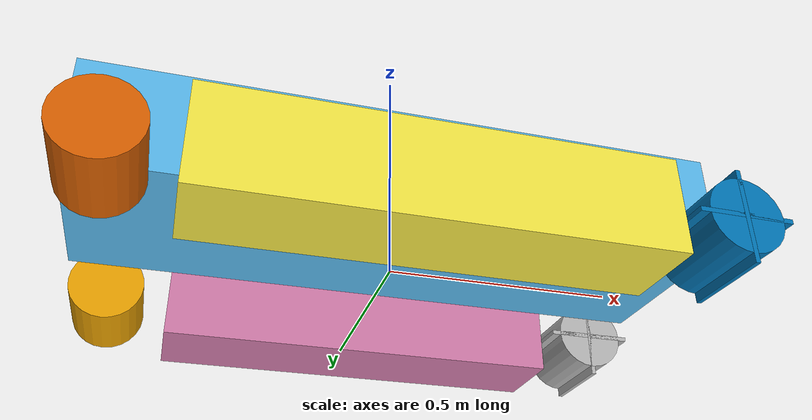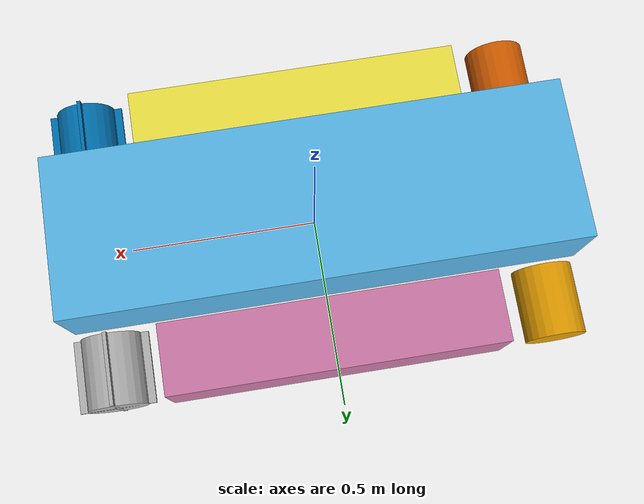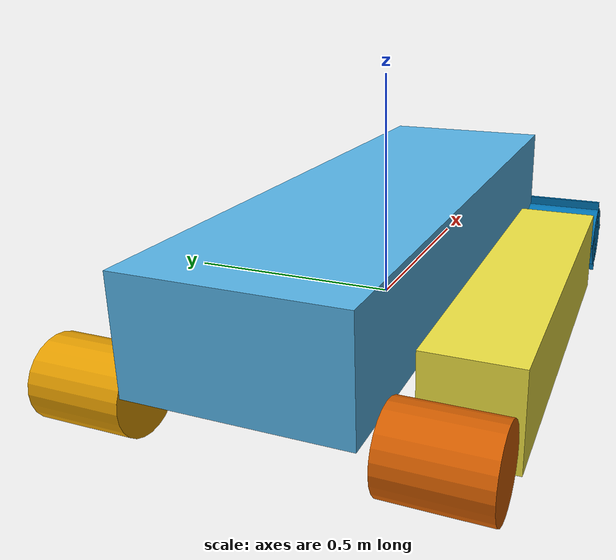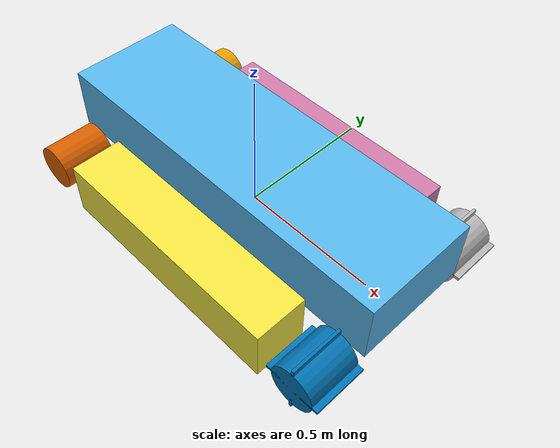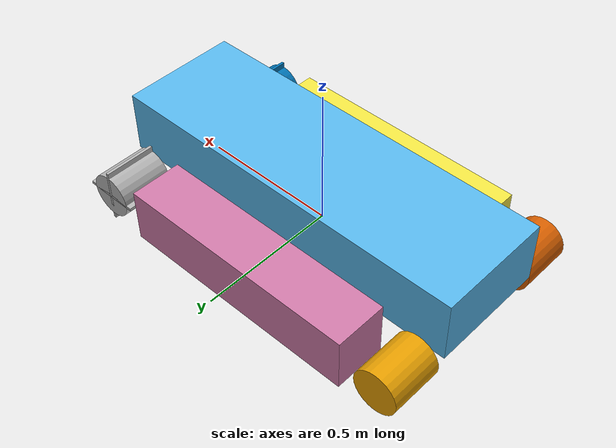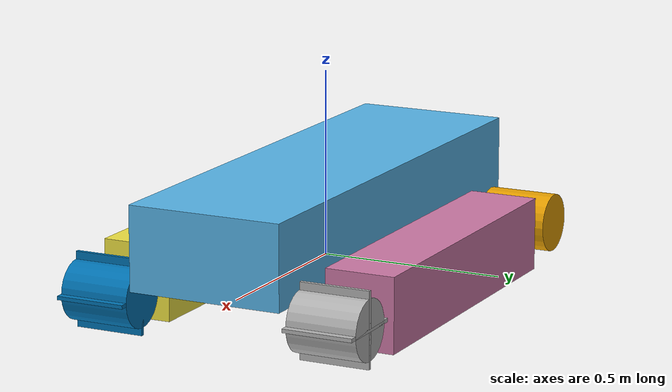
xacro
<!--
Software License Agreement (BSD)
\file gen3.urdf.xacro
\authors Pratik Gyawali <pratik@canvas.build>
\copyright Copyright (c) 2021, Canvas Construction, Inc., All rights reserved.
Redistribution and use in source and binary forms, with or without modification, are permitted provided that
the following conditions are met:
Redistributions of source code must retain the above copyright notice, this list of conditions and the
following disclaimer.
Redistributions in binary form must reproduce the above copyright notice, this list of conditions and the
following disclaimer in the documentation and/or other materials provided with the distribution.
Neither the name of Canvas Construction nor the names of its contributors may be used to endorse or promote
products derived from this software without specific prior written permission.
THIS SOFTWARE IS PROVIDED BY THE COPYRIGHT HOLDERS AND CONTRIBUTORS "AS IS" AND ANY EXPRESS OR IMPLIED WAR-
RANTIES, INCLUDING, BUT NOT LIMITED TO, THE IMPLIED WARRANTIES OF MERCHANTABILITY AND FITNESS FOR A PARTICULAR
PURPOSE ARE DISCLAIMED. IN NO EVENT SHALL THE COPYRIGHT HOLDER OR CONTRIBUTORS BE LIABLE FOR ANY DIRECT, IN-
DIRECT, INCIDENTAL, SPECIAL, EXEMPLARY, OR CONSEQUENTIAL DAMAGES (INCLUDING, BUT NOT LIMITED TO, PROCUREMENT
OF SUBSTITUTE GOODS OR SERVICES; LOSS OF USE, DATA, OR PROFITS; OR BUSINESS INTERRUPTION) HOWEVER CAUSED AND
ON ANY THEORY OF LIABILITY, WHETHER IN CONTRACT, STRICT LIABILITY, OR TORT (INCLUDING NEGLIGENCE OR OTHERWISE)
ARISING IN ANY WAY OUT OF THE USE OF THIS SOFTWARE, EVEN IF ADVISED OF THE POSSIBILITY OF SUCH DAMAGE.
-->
<?xml version="1.0"?>
<robot name="gen3" xmlns:xacro="http://ros.org/wiki/xacro">

  <xacro:arg name="robot_namespace" default="/" />

  <!-- Included URDF/XACRO Files -->
  <xacro:include filename="$(find gen3_description)/urdf_xacro/track_gazebo.urdf.xacro" />

  <!-- Base Size -->
  <xacro:property name="base_x_size" value="0.98740000" />
  <xacro:property name="base_y_size" value="0.57090000" />
  <xacro:property name="base_z_size" value="0.24750000" />

  <!-- Wheel Mounting Positions -->
  <xacro:property name="wheelbase" value="0.5120" />
  <xacro:property name="track" value="0.5708" />
  <xacro:property name="wheel_vertical_offset" value="0.03282" />

  <!-- Wheel Properties -->
  <xacro:property name="wheel_length" value="0.1143" />
  <xacro:property name="wheel_radius" value="0.1651" />

  <!-- Track mounting positions -->
  <xacro:property name="x" value="0" />
  <xacro:property name="y" value="0.32" />
  <xacro:property name="z" value="0" />

  <xacro:macro name="make_box_inertia" params="mass size_x size_y size_z">
    <inertial>
        <mass value="${mass}" />
        <inertia ixx="${mass * (size_y * size_y + size_z * size_z) / 12}" ixy="0" ixz="0" iyy="${mass * (size_z * size_z + size_x * size_x) / 12}" iyz="0" izz="${mass * (size_x * size_x + size_y * size_y) / 12}" />
    </inertial>
</xacro:macro>

<link name="dummy">
</link>

<link name="base_link">

      <xacro:make_box_inertia mass="100" size_x="1.34" size_y="0.42" size_z="0.225" />

      <visual>
          <geometry>
              <box size="1.34 0.42 0.225" />
          </geometry>
          <origin xyz="0 0 0.15" rpy="0 0 0"/>
      </visual>

      <collision>
          <geometry>
              <box size="1.34 0.42 0.225" />
          </geometry>
          <origin xyz="0 0 0.15" rpy="0 0 0"/>
      </collision>
  </link>

  <link name="imu_link">

      <visual>
          <geometry>
              <box size="0.02 0.02 0.02" />
          </geometry>

      </visual>
  </link>

  <joint name="dummy_joint" type="fixed">
     <parent link="dummy"/>
     <child link="base_link"/>

   </joint>

 <joint name="imu_joint" type="fixed">
     <parent link="base_link"/>
     <child link="imu_link"/>
     <origin xyz="0 0 0.2" rpy="0 0 0" />
  </joint>

  <!-- Gen3 Track macros -->

  <xacro:gen3_track track_prefix="right" x="${x}" y="-${y}" z="${z}">
    <origin xyz="${x} -${y} ${z}" rpy="0 0 0" />
  </xacro:gen3_track>

  <xacro:gen3_track track_prefix="left" x="${x}" y="${y}" z="${z}">
    <origin xyz="${x} ${y} ${z}" rpy="0 0 0" />
  </xacro:gen3_track>

  <gazebo>

  <plugin name="gazebo_ros_control" filename="libgazebo_ros_control.so">
    <robotNamespace>$(arg robot_namespace)</robotNamespace>
    <legacyModeNS>true</legacyModeNS>
  </plugin>

  </gazebo>

    <gazebo reference="imu_link">
    <gravity>true</gravity>
    <sensor name="imu_sensor" type="imu">
      <imu>
          <angular_velocity>
            <x>
              <noise type="gaussian">
                <mean>0.0</mean>
                <stddev>2e-4</stddev>
                <bias_mean>0.0000075</bias_mean>
                <bias_stddev>0.0000008</bias_stddev>
              </noise>
            </x>
            <y>
              <noise type="gaussian">
                <mean>0.0</mean>
                <stddev>2e-4</stddev>
                <bias_mean>0.0000075</bias_mean>
                <bias_stddev>0.0000008</bias_stddev>
              </noise>
            </y>
            <z>
              <noise type="gaussian">
                <mean>0.0</mean>
                <stddev>2e-4</stddev>
                <bias_mean>0.0000075</bias_mean>
                <bias_stddev>0.0000008</bias_stddev>
              </noise>
            </z>
          </angular_velocity>
          <linear_acceleration>
            <x>
              <noise type="gaussian">
                <mean>0.0</mean>
                <stddev>1.7e-2</stddev>
                <bias_mean>0.1</bias_mean>
                <bias_stddev>0.001</bias_stddev>
              </noise>
            </x>
            <y>
              <noise type="gaussian">
                <mean>0.0</mean>
                <stddev>1.7e-2</stddev>
                <bias_mean>0.1</bias_mean>
                <bias_stddev>0.001</bias_stddev>
              </noise>
            </y>
            <z>
              <noise type="gaussian">
                <mean>0.0</mean>
                <stddev>1.7e-2</stddev>
                <bias_mean>0.1</bias_mean>
                <bias_stddev>0.001</bias_stddev>
              </noise>
            </z>
          </linear_acceleration>
      </imu>
      <always_on>true</always_on>
      <update_rate>100</update_rate>
      <visualize>true</visualize>
      <topic>__default_topic__</topic>
      <plugin filename="libgazebo_ros_imu_sensor.so" name="imu_plugin">
        <topicName>imu</topicName>
        <bodyName>imu_link</bodyName>
        <updateRateHZ>10.0</updateRateHZ>
        <gaussianNoise>0.0</gaussianNoise>
        <xyzOffset>0 0 0</xyzOffset>
        <rpyOffset>0 0 0</rpyOffset>
        <frameName>imu_link</frameName>
        <initialOrientationAsReference>false</initialOrientationAsReference>
      </plugin>
      <pose>0 0 0.5 0 0 0</pose>
    </sensor>
  </gazebo>

</robot>

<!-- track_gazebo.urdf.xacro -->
<robot xmlns:xacro="http://ros.org/wiki/xacro" name="gen3_track">

	<xacro:macro name="gen3_track" params="track_prefix x y z *joint_pose ">

	 <xacro:include filename="$(find gazebo_continuous_track)/urdf_xacro/macros_track_gazebo.urdf.xacro" />
	 <xacro:include filename="$(find gen3_description)/urdf_xacro/track.urdf.xacro" />

	 <xacro:property name="track_material">
			 <material>
					 <ambient>0.1 0.1 0.1 1</ambient>
					 <diffuse>0.2 0.2 0.2 1</diffuse>
					 <specular>0 0 0 1</specular>
					 <emissive>0 0 0 1</emissive>
			 </material>
	 </xacro:property>

	 <xacro:make_track name="${track_prefix}_track" x="${x}" y="${y}" z="${z}" mass="27" length="1.2" radius="0.12" width="0.18" parent="${track_prefix}_body" sprocket_joint="${track_prefix}_sprocket_axle" pitch_diameter="0.22">
			 <xacro:insert_block name="track_material" />
			 <pattern>
					 <elements_per_round>40</elements_per_round>
					 <element>
							 <xacro:make_polyline_element pose="0 0.09 0 ${pi / 2} 0 0">
									 <polyline>
											 <point>-0.02 -0.01</point>
											 <point>-0.01 0.01</point>
											 <point>0.01 0.01</point>
											 <point>0.02 -0.01</point>
											 <height>0.18</height>
									 </polyline>
									 <xacro:insert_block name="track_material" />
							 </xacro:make_polyline_element>
					 </element>
			 </pattern>

	 </xacro:make_track>

	 <xacro:track track_prefix="${track_prefix}"/>

	 <joint name="${track_prefix}_body_joint" type="fixed">
		 <parent link="base_link"/>
		 <child link="${track_prefix}_body"/>
		 <xacro:insert_block name="joint_pose"/>
	 </joint>

	</xacro:macro>

</robot>

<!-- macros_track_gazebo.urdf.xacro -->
<robot xmlns:xacro="http://www.ros.org/wiki/xacro">

    <!-- macros for making track                                                               -->
    <!--     * useful when difining entities for ContinuousTrack plugin                        -->
    <!--     * see gazebo_continuous_track_example/urdf/example_track.urdf.xacro to know usage -->

    <xacro:include filename="macros_common_gazebo.urdf.xacro" />

    <!-- macro which expands to plugin definition -->

    <xacro:macro name="make_track_plugin" params="name sprocket_joint:=^ pitch_diameter:=^ length:=^ *pattern">
        <gazebo>
            <plugin name="${name}" filename="libContinuousTrack.so">
                <sprocket>
                    <joint>${sprocket_joint}</joint>
                    <pitch_diameter>${pitch_diameter}</pitch_diameter>
                </sprocket>
                <trajectory>
                    <segment>
                        <joint>${name}_straight_segment_joint0</joint>
                        <end_position>${length}</end_position>
                    </segment>
                    <segment>
                        <joint>${name}_arc_segment_joint0</joint>
                        <end_position>${pi}</end_position>
                    </segment>
                    <segment>
                        <joint>${name}_straight_segment_joint1</joint>
                        <end_position>${length}</end_position>
                    </segment>
                    <segment>
                        <joint>${name}_arc_segment_joint1</joint>
                        <end_position>${pi}</end_position>
                    </segment>
                </trajectory>
                <xacro:insert_block name="pattern" />
            </plugin>
        </gazebo>
    </xacro:macro>

    <!-- main entry point: macro for making oval track by ContinuousTrack plugin -->

    <xacro:macro name="make_track" params="name x:=^|0 y:=^|0 z:=^|0 roll:=^|0 pitch:=^|0 yaw:=^|0 mass:=^ length:=^ radius:=^ width:=^ parent:=^ sprocket_joint:=^ pitch_diameter:=^ *material *pattern mu:=^|${friction_coff}  min_depth:=^|0.01 implicit_spring_damper:=^|1">
        <xacro:populate_straight_segments name_prefix="${name}_straight_segment" x="${x - length / 2}" z="${z + radius}" dx="${length}" dz="${-2 * radius}" dpitch="${pi}" mass="${mass / 4}" size_x="${length}" size_y="${width}" size_z="${radius}" count="2">
            <xacro:insert_block name="material" />
        </xacro:populate_straight_segments>
        <xacro:populate_arc_segments name_prefix="${name}_arc_segment" x="${x + length / 2}" z="${z + radius}" dx="${-length}" dz="${-2 * radius}" dpitch="${pi}" mass="${mass / 4}" length="${width}" count="2">
            <xacro:insert_block name="material" />
        </xacro:populate_arc_segments>
        <xacro:make_track_plugin name="${name}">
            <xacro:insert_block name="pattern" />
        </xacro:make_track_plugin>
    </xacro:macro>

</robot>

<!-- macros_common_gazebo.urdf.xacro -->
<robot xmlns:xacro="http://www.ros.org/wiki/xacro">

    <!-- macros which expand to inertial/collision/visual -->
    <xacro:property name="friction_coff" value="10" />

    <xacro:macro name="make_cylinder_inertial" params="pose:=^|'0 0 0 0 0 0' mass:=^ length:=^ radius:=^">
        <inertial>
            <pose>${pose}</pose>
            <mass>${mass}</mass>
            <inertia>
                <ixx>${mass * (radius * radius / 4 + length * length / 12)}</ixx>
                <ixy>0</ixy>
                <ixz>0</ixz>
                <iyy>${mass * (radius * radius / 4 + length * length / 12)}</iyy>
                <iyz>0</iyz>
                <izz>${mass * radius * radius / 2}</izz>
            </inertia>
        </inertial>
    </xacro:macro>

    <xacro:macro name="make_cylinder_collision" params="name:='collision' pose:=^|'0 0 0 0 0 0' length:=^ radius:=^ mu:=^|${friction_coff} min_depth:=^|0.01">
        <collision name="${name}">
            <pose>${pose}</pose>
            <geometry>
                <cylinder>
                    <length>${length}</length>
                    <radius>${radius}</radius>
                </cylinder>
            </geometry>
            <surface>
                <friction>
                    <ode>
                        <mu>${mu}</mu>
                        <mu2>${mu}</mu2>
                    </ode>
                </friction>
                <contact>
                    <ode>
                        <min_depth>${min_depth}</min_depth>
                    </ode>
                </contact>
            </surface>
        </collision>
    </xacro:macro>

    <xacro:macro name="make_cylinder_visual" params="name:='visual' pose:=^|'0 0 0 0 0 0' length:=^ radius:=^ *material">
        <visual name="${name}">
            <pose>${pose}</pose>
            <geometry>
                <cylinder>
                    <length>${length}</length>
                    <radius>${radius}</radius>
                </cylinder>
            </geometry>
            <xacro:insert_block name="material" />
        </visual>
    </xacro:macro>

    <xacro:macro name="make_box_inertial" params="pose:=^|'0 0 0 0 0 0' mass:=^ size_x:=^ size_y:=^ size_z:=^">
        <inertial>
            <pose>${pose}</pose>
            <mass>${mass}</mass>
            <inertia>
                <ixx>${mass * (size_y * size_y + size_z * size_z) / 12}</ixx>
                <ixy>0</ixy>
                <ixz>0</ixz>
                <iyy>${mass * (size_z * size_z + size_x * size_x) / 12}</iyy>
                <iyz>0</iyz>
                <izz>${mass * (size_x * size_x + size_y * size_y) / 12}</izz>
            </inertia>
        </inertial>
    </xacro:macro>

    <xacro:macro name="make_box_collision" params="name:='collision' pose:=^|'0 0 0 0 0 0' size:=^ mu:=^|${friction_coff}  min_depth:=^|0.01">
        <collision name="${name}">
            <pose>${pose}</pose>
            <geometry>
                <box>
                    <size>${size}</size>
                </box>
            </geometry>
            <surface>
                <friction>
                    <ode>
                        <mu>${mu}</mu>
                        <mu2>${mu}</mu2>
                    </ode>
                </friction>
                <contact>
                    <ode>
                        <min_depth>${min_depth}</min_depth>
                    </ode>
                </contact>
            </surface>
        </collision>
    </xacro:macro>

    <xacro:macro name="make_box_visual" params="name:='visual' pose:=^|'0 0 0 0 0 0' size:=^ *material">
        <visual name="${name}">
            <pose>${pose}</pose>
            <geometry>
                <box>
                    <size>${size}</size>
                </box>
            </geometry>
            <xacro:insert_block name="material" />
        </visual>
    </xacro:macro>

    <xacro:macro name="make_polyline_collision" params="name:='collision' pose:=^|'0 0 0 0 0 0' **polyline mu:=^|${friction_coff}  min_depth:=^|0.01">
        <collision name="${name}">
            <pose>${pose}</pose>
            <geometry>
                <polyline>
                    <xacro:insert_block name="polyline" />
                </polyline>
            </geometry>
            <surface>
                <friction>
                    <ode>
                        <mu>${mu}</mu>
                        <mu2>${mu}</mu2>
                    </ode>
                </friction>
                <contact>
                    <ode>
                        <min_depth>${min_depth}</min_depth>
                    </ode>
                </contact>
            </surface>
        </collision>
    </xacro:macro>

    <xacro:macro name="make_polyline_visual" params="name:='visual' pose:=^|'0 0 0 0 0 0' **polyline *material">
        <visual name="${name}">
            <pose>${pose}</pose>
            <geometry>
                <polyline>
                    <xacro:insert_block name="polyline" />
                </polyline>
            </geometry>
            <xacro:insert_block name="material" />
        </visual>
    </xacro:macro>

    <!-- macros which expand to box/polyline collision and visual. convenient when defining pattern elements on a track -->

    <xacro:macro name="make_box_element" params="pose:=^|'0 0 0 0 0 0' size:=^ mu:=^|${friction_coff}  min_depth:=^|0.01 *material">
        <xacro:make_box_collision />
        <xacro:make_box_visual>
            <xacro:insert_block name="material" />
        </xacro:make_box_visual>
    </xacro:macro>

    <xacro:macro name="make_polyline_element" params="pose:=^|'0 0 0 0 0 0' **polyline mu:=^|${friction_coff} min_depth:=^|0.01 *material">
        <xacro:make_polyline_collision>
            <polyline>
                <xacro:insert_block name="polyline" />
            </polyline>
        </xacro:make_polyline_collision>
        <xacro:make_polyline_visual>
            <polyline>
                <xacro:insert_block name="polyline" />
            </polyline>
            <xacro:insert_block name="material" />
        </xacro:make_polyline_visual>
    </xacro:macro>

    <!-- macros for populating general links/joints -->

    <xacro:macro name="populate_links" params="name_prefix:=^ x:=^|0 y:=^|0 z:=^|0 roll:=^|0 pitch:=^|0 yaw:=^|0 dx:=^|0 dy:=^|0 dz:=^|0 droll:=^|0 dpitch:=^|0 dyaw:=^|0 i:=0 count:=^ **template">
        <xacro:if value="${i &lt; count}">
            <gazebo>
                <link name="${name_prefix}${i}">
                    <pose>${x} ${y} ${z} ${roll} ${pitch} ${yaw}</pose>
                    <xacro:insert_block name="template" />
                </link>
            </gazebo>
            <xacro:populate_links x="${x+dx}" y="${y+dy}" z="${z+dz}" roll="${roll+droll}" pitch="${pitch+dpitch}" yaw="${yaw+dyaw}" i="${i+1}">
                <template>
                    <xacro:insert_block name="template" />
                </template>
            </xacro:populate_links>
        </xacro:if>
    </xacro:macro>

    <xacro:macro name="populate_joints" params="name_prefix:=^ type:=^ child_prefix:=^ i:=0 count:=^ **template">
        <xacro:if value="${i &lt; count}">
            <gazebo>
                <joint name="${name_prefix}${i}" type="${type}">
                    <child>${child_prefix}${i}</child>
                    <xacro:insert_block name="template" />
                </joint>
            </gazebo>
            <xacro:populate_joints i="${i+1}">
                <template>
                    <xacro:insert_block name="template" />
                </template>
            </xacro:populate_joints>
        </xacro:if>
    </xacro:macro>

    <!-- track segment templates which can be used with above population macros -->

    <xacro:macro name="make_straight_segment_link_template" params="mass:=^ size_x:=^ size_y:=^ size_z:=^ mu:=^|${friction_coff} min_depth:=^|0.01 *material">
        <xacro:make_box_inertial pose="${size_x / 2} 0 ${-size_z / 2} 0 0 0" />
        <xacro:make_box_collision pose="${size_x / 2} 0 ${-size_z / 2} 0 0 0" size="${size_x} ${size_y} ${size_z}" />
        <xacro:make_box_visual pose="${size_x / 2} 0 ${-size_z / 2} 0 0 0" size="${size_x} ${size_y} ${size_z}">
            <xacro:insert_block name="material" />
        </xacro:make_box_visual>
    </xacro:macro>

    <xacro:macro name="make_straight_segment_joint_template" params="parent:=^ implicit_spring_damper:=^|1">
        <parent>${parent}</parent>
        <axis>
            <xyz>1 0 0</xyz>
            <use_parent_model_frame>0</use_parent_model_frame>
        </axis>
        <physics>
            <ode>
                <implicit_spring_damper>${implicit_spring_damper}</implicit_spring_damper>
            </ode>
        </physics>
    </xacro:macro>

    <xacro:macro name="make_arc_segment_link_template" params="mass:=^ length:=^ radius:=^ mu:=^|${friction_coff} min_depth:=^|0.5 *material">
        <xacro:make_cylinder_inertial pose="0 0 ${-radius} ${pi / 2} 0 0" />
        <xacro:make_cylinder_collision pose="0 0 ${-radius} ${pi / 2} 0 0" />
        <xacro:make_cylinder_visual pose="0 0 ${-radius} ${pi / 2} 0 0">
            <xacro:insert_block name="material" />
        </xacro:make_cylinder_visual>
    </xacro:macro>

    <xacro:macro name="make_arc_segment_joint_template" params="parent:=^ radius:=^ implicit_spring_damper:=^|1">
        <parent>${parent}</parent>
        <pose>0 0 ${-radius} 0 0 0</pose>
        <axis>
            <xyz>0 1 0</xyz>
            <use_parent_model_frame>0</use_parent_model_frame>
        </axis>
        <physics>
            <ode>
                <implicit_spring_damper>${implicit_spring_damper}</implicit_spring_damper>
            </ode>
        </physics>
    </xacro:macro>

    <!-- macros for populating track segments with above population macros and above templates -->

    <xacro:macro name="populate_straight_segments" params="name_prefix:=^ x:=^|0 y:=^|0 z:=^|0 roll:=^|0 pitch:=^|0 yaw:=^|0 dx:=^|0 dy:=^|0 dz:=^|0 droll:=^|0 dpitch:=^|0 dyaw:=^|0 mass:=^ size_x:=^ size_y:=^ size_z:=^ parent:=^ mu:=^|${friction_coff} min_depth:=^|0.01 implicit_spring_damper:=^|1 *material count:=^">
        <xacro:populate_links name_prefix="${name_prefix}_link">
            <template>
                <xacro:make_straight_segment_link_template>
                    <xacro:insert_block name="material" />
                </xacro:make_straight_segment_link_template>
            </template>
        </xacro:populate_links>
        <xacro:populate_joints name_prefix="${name_prefix}_joint" type="prismatic" child_prefix="${name_prefix}_link">
            <template>
                <xacro:make_straight_segment_joint_template />
            </template>
        </xacro:populate_joints>
    </xacro:macro>

    <xacro:macro name="populate_arc_segments" params="name_prefix:=^ x:=^|0 y:=^|0 z:=^|0 roll:=^|0 pitch:=^|0 yaw:=^|0 dx:=^|0 dy:=^|0 dz:=^|0 droll:=^|0 dpitch:=^|0 dyaw:=^|0 mass:=^ length:=^ radius:=^ parent:=^ mu:=^|${friction_coff}  min_depth:=^|0.01 implicit_spring_damper:=^|1 *material count:=^">
        <xacro:populate_links name_prefix="${name_prefix}_link">
            <template>
                <xacro:make_arc_segment_link_template>
                    <xacro:insert_block name="material" />
                </xacro:make_arc_segment_link_template>
            </template>
        </xacro:populate_links>
        <xacro:populate_joints name_prefix="${name_prefix}_joint" type="revolute" child_prefix="${name_prefix}_link">
            <template>
                <xacro:make_arc_segment_joint_template />
            </template>
        </xacro:populate_joints>
    </xacro:macro>

</robot>

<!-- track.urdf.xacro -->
<robot xmlns:xacro="http://ros.org/wiki/xacro" name="track">

	<xacro:macro name="track" params="track_prefix">

		    <!-- URDF file for general ROS systems such as ros_control, rviz, etc.           -->
		    <!-- We define here;                                                             -->
		    <!--     * a body to be wrapped by the track                                     -->
		    <!--     * a sprocket to drive the track                                         -->
		    <!--     * an axle and actuator for the sprocket                                 -->
		    <!--     * an idler wheel on the other side of the sprocket                      -->
		    <!-- Other entities specialized for Gazebo are defined in *_gazebo.urdf.xacro .  -->

    <xacro:macro name="make_box_inertia" params="mass size_x size_y size_z">
        <inertial>
            <mass value="${mass}" />
            <inertia ixx="${mass * (size_y * size_y + size_z * size_z) / 12}" ixy="0" ixz="0" iyy="${mass * (size_z * size_z + size_x * size_x) / 12}" iyz="0" izz="${mass * (size_x * size_x + size_y * size_y) / 12}" />
        </inertial>
    </xacro:macro>

    <xacro:macro name="make_wheel_inertia" params="mass radius length">
        <inertial>
            <mass value="${mass}" />
            <!-- assuming axis of cylinder is y, not z -->
            <inertia ixx="${mass * (radius * radius / 4 + length * length / 12)}" ixy="0" ixz="0" iyy="${mass * radius * radius / 2}" iyz="0" izz="${mass * (radius * radius / 4 + length * length / 12)}" />
        </inertial>
    </xacro:macro>

    <!-- body to be wrapped by the track -->

    <link name="${track_prefix}_body">
        <xacro:make_box_inertia mass="5" size_x="0.9" size_y="0.19" size_z="0.2" />

        <visual>
            <geometry>
                <box size="0.9 0.19 0.2" />
            </geometry>
        </visual>

        <collision>
            <geometry>
                <box size="0.9 0.19 0.2" />
            </geometry>
        </collision>
    </link>

    <!-- sprocket driving the track -->

    <link name="${track_prefix}_sprocket">
        <xacro:make_wheel_inertia mass="1" radius="0.08" length="0.19" />

        <visual>
            <origin xyz="0 0 0" rpy="${pi / 2} 0 0" />
            <geometry>
                <cylinder radius="0.08" length="0.19" />
            </geometry>
        </visual>
        <visual>
            <geometry>
                <box size="0.01 0.19 0.20" />
            </geometry>
        </visual>
        <visual>
            <geometry>
                <box size="0.20 0.19 0.01" />
            </geometry>
        </visual>

        <collision>
            <origin xyz="0 0 0" rpy="${pi / 2} 0 0" />
            <geometry>
                <cylinder radius="0.08" length="0.19" />
            </geometry>
        </collision>
    </link>

    <joint name="${track_prefix}_sprocket_axle" type="continuous">
        <origin xyz="0.585 0 0" rpy="0 0 0" />
        <parent link="${track_prefix}_body" />
        <child link="${track_prefix}_sprocket" />
        <axis xyz="0 1 0" />
    </joint>

    <transmission name="${track_prefix}_sprocket_transmission">
        <type>transmission_interface/SimpleTransmission</type>
        <joint name="${track_prefix}_sprocket_axle">
            <hardwareInterface>hardware_interface/VelocityJointInterface</hardwareInterface>
        </joint>
        <actuator name="${track_prefix}_sprocket_actuator">
            <mechanicalReduction>1</mechanicalReduction>
        </actuator>
    </transmission>

    <!-- idler on the other side of the sprocket -->

    <link name="${track_prefix}_idler">
        <xacro:make_wheel_inertia mass="0.5" radius="0.08" length="0.19" />

        <visual>
            <origin xyz="0 0 0" rpy="${pi / 2} 0 0" />
            <geometry>
                <cylinder radius="0.08" length="0.19" />
            </geometry>
        </visual>

        <collision>
            <origin xyz="0 0 0" rpy="${pi / 2} 0 0" />
            <geometry>
                <cylinder radius="0.08" length="0.19" />
            </geometry>
        </collision>
    </link>

    <joint name="${track_prefix}_idler_axle" type="fixed">
        <origin xyz="-0.585 0 0" rpy="0 0 0" />
        <parent link="${track_prefix}_body" />
        <child link="${track_prefix}_idler" />
    </joint>

	</xacro:macro>

</robot>
